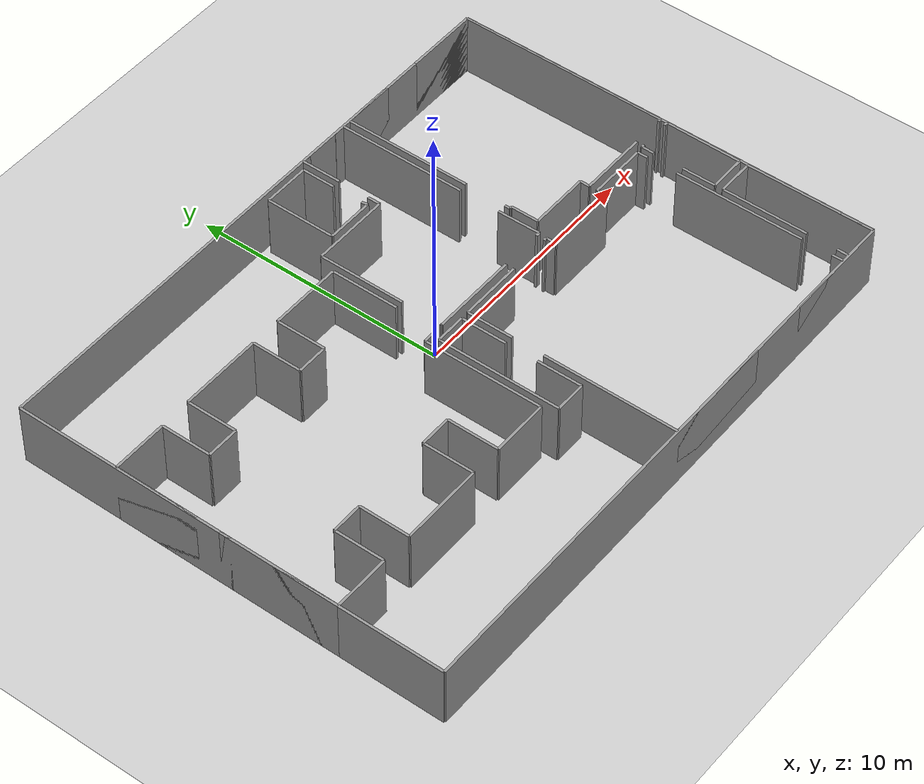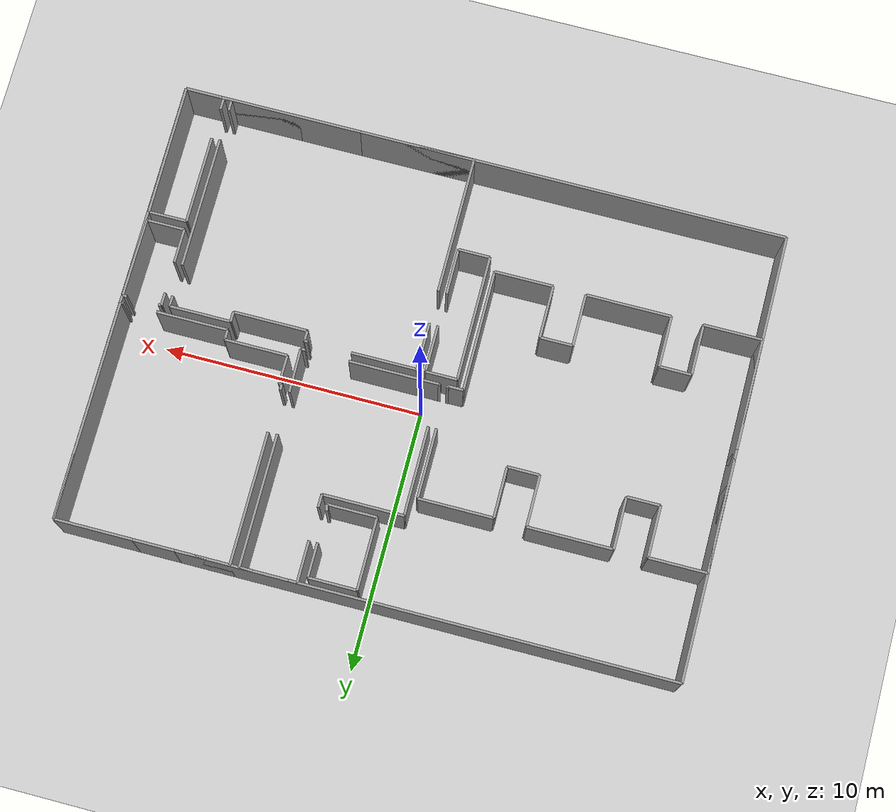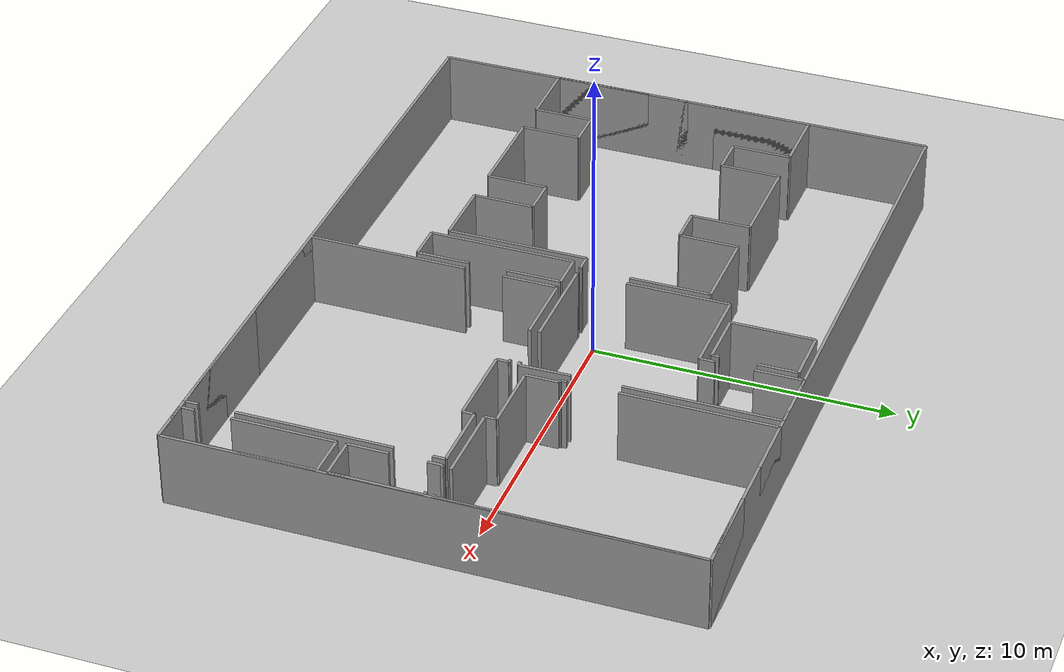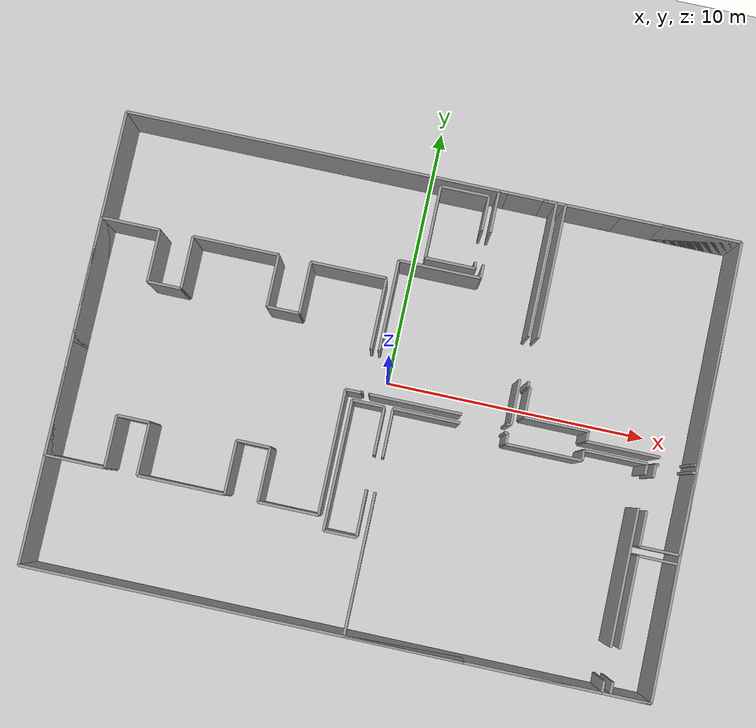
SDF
<sdf version="1.6">
 <world name="default">
  <model name="ground_plane">
   <static>1</static>
   <link name="link">
    <collision name="collision">
     <geometry><plane><normal>0 0 1</normal><size>100 100</size></plane></geometry>
     <surface><friction><ode><mu>100</mu><mu2>50</mu2></ode></friction></surface>
    </collision>
    <visual name="visual">
     <cast_shadows>0</cast_shadows>
     <geometry><plane><normal>0 0 1</normal><size>100 100</size></plane></geometry>
     <material>
      <script><uri>file://media/materials/scripts/gazebo.material</uri><name>Gazebo/Grey</name></script>
     </material>
    </visual>
   </link>
  </model>
  <model name="0510034881_A-40">
   <static>1</static>
   <link name="Wall_0">
    <collision name="Wall_0_Collision">
     <geometry><box><size>2.24652074859 0.1 2.5</size></box></geometry>
     <pose>1.12326037429 0 1.25 0 0 0</pose>
    </collision>
    <visual name="Wall_0_Visual">
     <pose>1.12326037429 0 1.25 0 0 0</pose>
     <geometry><box><size>2.24652074859 0.1 2.5</size></box></geometry>
     <material>
      <script><uri>file://media/materials/scripts/gazebo.material</uri><name>Gazebo/Grey</name></script>
      <ambient>1 1 1 1</ambient>
     </material>
    </visual>
    <pose>10.2310616397 -13.1289464833 0 0 0 3.14159265359</pose>
   </link>
   <link name="Wall_1">
    <collision name="Wall_1_Collision">
     <geometry><box><size>2.03075321906 0.1 2.5</size></box></geometry>
     <pose>1.01537660953 0 1.25 0 0 0</pose>
    </collision>
    <visual name="Wall_1_Visual">
     <pose>1.01537660953 0 1.25 0 0 0</pose>
     <geometry><box><size>2.03075321906 0.1 2.5</size></box></geometry>
     <material>
      <script><uri>file://media/materials/scripts/gazebo.material</uri><name>Gazebo/Grey</name></script>
      <ambient>1 1 1 1</ambient>
     </material>
    </visual>
    <pose>7.98454089112 -13.1289464833 0 0 0 1.57079632679</pose>
   </link>
   <link name="Wall_2">
    <collision name="Wall_2_Collision">
     <geometry><box><size>1.25525933353 0.1 2.5</size></box></geometry>
     <pose>0.627629666766 0 1.25 0 0 0</pose>
    </collision>
    <visual name="Wall_2_Visual">
     <pose>0.627629666766 0 1.25 0 0 0</pose>
     <geometry><box><size>1.25525933353 0.1 2.5</size></box></geometry>
     <material>
      <script><uri>file://media/materials/scripts/gazebo.material</uri><name>Gazebo/Grey</name></script>
      <ambient>1 1 1 1</ambient>
     </material>
    </visual>
    <pose>7.98454089112 -11.0981932642 0 0 0 3.14159265359</pose>
   </link>
   <link name="Wall_3">
    <collision name="Wall_3_Collision">
     <geometry><box><size>2.01806101144 0.1 2.5</size></box></geometry>
     <pose>1.00903050572 0 1.25 0 0 0</pose>
    </collision>
    <visual name="Wall_3_Visual">
     <pose>1.00903050572 0 1.25 0 0 0</pose>
     <geometry><box><size>2.01806101144 0.1 2.5</size></box></geometry>
     <material>
      <script><uri>file://media/materials/scripts/gazebo.material</uri><name>Gazebo/Grey</name></script>
      <ambient>1 1 1 1</ambient>
     </material>
    </visual>
    <pose>6.72928155759 -11.0981932642 0 0 0 -1.57079632679</pose>
   </link>
   <link name="Wall_4">
    <collision name="Wall_4_Collision">
     <geometry><box><size>3.26481656587 0.1 2.5</size></box></geometry>
     <pose>1.63240828293 0 1.25 0 0 0</pose>
    </collision>
    <visual name="Wall_4_Visual">
     <pose>1.63240828293 0 1.25 0 0 0</pose>
     <geometry><box><size>3.26481656587 0.1 2.5</size></box></geometry>
     <material>
      <script><uri>file://media/materials/scripts/gazebo.material</uri><name>Gazebo/Grey</name></script>
      <ambient>1 1 1 1</ambient>
     </material>
    </visual>
    <pose>6.72928155759 -13.1162542757 0 0 0 3.14159265359</pose>
   </link>
   <link name="Wall_5">
    <collision name="Wall_5_Collision">
     <geometry><box><size>1.98353820672 0.1 2.5</size></box></geometry>
     <pose>0.991769103359 0 1.25 0 0 0</pose>
    </collision>
    <visual name="Wall_5_Visual">
     <pose>0.991769103359 0 1.25 0 0 0</pose>
     <geometry><box><size>1.98353820672 0.1 2.5</size></box></geometry>
     <material>
      <script><uri>file://media/materials/scripts/gazebo.material</uri><name>Gazebo/Grey</name></script>
      <ambient>1 1 1 1</ambient>
     </material>
    </visual>
    <pose>3.46446499172 -13.1162542757 0 0 0 1.57079632679</pose>
   </link>
   <link name="Wall_6">
    <collision name="Wall_6_Collision">
     <geometry><box><size>1.22835185338 0.1 2.5</size></box></geometry>
     <pose>0.61417592669 0 1.25 0 0 0</pose>
    </collision>
    <visual name="Wall_6_Visual">
     <pose>0.61417592669 0 1.25 0 0 0</pose>
     <geometry><box><size>1.22835185338 0.1 2.5</size></box></geometry>
     <material>
      <script><uri>file://media/materials/scripts/gazebo.material</uri><name>Gazebo/Grey</name></script>
      <ambient>1 1 1 1</ambient>
     </material>
    </visual>
    <pose>3.46446499172 -11.132716069 0 0 0 3.14159265359</pose>
   </link>
   <link name="Wall_7">
    <collision name="Wall_7_Collision">
     <geometry><box><size>1.96741910304 0.1 2.5</size></box></geometry>
     <pose>0.983709551521 0 1.25 0 0 0</pose>
    </collision>
    <visual name="Wall_7_Visual">
     <pose>0.983709551521 0 1.25 0 0 0</pose>
     <geometry><box><size>1.96741910304 0.1 2.5</size></box></geometry>
     <material>
      <script><uri>file://media/materials/scripts/gazebo.material</uri><name>Gazebo/Grey</name></script>
      <ambient>1 1 1 1</ambient>
     </material>
    </visual>
    <pose>2.23611313834 -11.132716069 0 0 0 -1.57079632679</pose>
   </link>
   <link name="Wall_8">
    <collision name="Wall_8_Collision">
     <geometry><box><size>2.23611313834 0.1 2.5</size></box></geometry>
     <pose>1.11805656917 0 1.25 0 0 0</pose>
    </collision>
    <visual name="Wall_8_Visual">
     <pose>1.11805656917 0 1.25 0 0 0</pose>
     <geometry><box><size>2.23611313834 0.1 2.5</size></box></geometry>
     <material>
      <script><uri>file://media/materials/scripts/gazebo.material</uri><name>Gazebo/Grey</name></script>
      <ambient>1 1 1 1</ambient>
     </material>
    </visual>
    <pose>2.23611313834 -13.100135172 0 0 0 3.14159265359</pose>
   </link>
   <link name="Wall_9">
    <collision name="Wall_9_Collision">
     <geometry><box><size>3.29845091606 0.1 2.5</size></box></geometry>
     <pose>1.64922545803 0 1.25 0 0 0</pose>
    </collision>
    <visual name="Wall_9_Visual">
     <pose>1.64922545803 0 1.25 0 0 0</pose>
     <geometry><box><size>3.29845091606 0.1 2.5</size></box></geometry>
     <material>
      <script><uri>file://media/materials/scripts/gazebo.material</uri><name>Gazebo/Grey</name></script>
      <ambient>1 1 1 1</ambient>
     </material>
    </visual>
    <pose>0.0 -13.100135172 0 0 0 1.57079632679</pose>
   </link>
   <link name="Wall_10">
    <collision name="Wall_10_Collision">
     <geometry><box><size>0.442323435527 0.1 2.5</size></box></geometry>
     <pose>0.221161717763 0 1.25 0 0 0</pose>
    </collision>
    <visual name="Wall_10_Visual">
     <pose>0.221161717763 0 1.25 0 0 0</pose>
     <geometry><box><size>0.442323435527 0.1 2.5</size></box></geometry>
     <material>
      <script><uri>file://media/materials/scripts/gazebo.material</uri><name>Gazebo/Grey</name></script>
      <ambient>1 1 1 1</ambient>
     </material>
    </visual>
    <pose>0.0 -8.81689586678 0 0 0 1.57079632679</pose>
   </link>
   <link name="Wall_11">
    <collision name="Wall_11_Collision">
     <geometry><box><size>3.3344967857 0.1 2.5</size></box></geometry>
     <pose>1.66724839285 0 1.25 0 0 0</pose>
    </collision>
    <visual name="Wall_11_Visual">
     <pose>1.66724839285 0 1.25 0 0 0</pose>
     <geometry><box><size>3.3344967857 0.1 2.5</size></box></geometry>
     <material>
      <script><uri>file://media/materials/scripts/gazebo.material</uri><name>Gazebo/Grey</name></script>
      <ambient>1 1 1 1</ambient>
     </material>
    </visual>
    <pose>0.0 -7.43154140515 0 0 0 1.57079632679</pose>
   </link>
   <link name="Wall_12">
    <collision name="Wall_12_Collision">
     <geometry><box><size>2.21402869708 0.1 2.5</size></box></geometry>
     <pose>1.10701434854 0 1.25 0 0 0</pose>
    </collision>
    <visual name="Wall_12_Visual">
     <pose>1.10701434854 0 1.25 0 0 0</pose>
     <geometry><box><size>2.21402869708 0.1 2.5</size></box></geometry>
     <material>
      <script><uri>file://media/materials/scripts/gazebo.material</uri><name>Gazebo/Grey</name></script>
      <ambient>1 1 1 1</ambient>
     </material>
    </visual>
    <pose>0.0 -4.09704461946 0 0 0 0.0</pose>
   </link>
   <link name="Wall_13">
    <collision name="Wall_13_Collision">
     <geometry><box><size>1.97554211592 0.1 2.5</size></box></geometry>
     <pose>0.987771057959 0 1.25 0 0 0</pose>
    </collision>
    <visual name="Wall_13_Visual">
     <pose>0.987771057959 0 1.25 0 0 0</pose>
     <geometry><box><size>1.97554211592 0.1 2.5</size></box></geometry>
     <material>
      <script><uri>file://media/materials/scripts/gazebo.material</uri><name>Gazebo/Grey</name></script>
      <ambient>1 1 1 1</ambient>
     </material>
    </visual>
    <pose>2.21402869708 -4.09704461946 0 0 0 -1.57079632679</pose>
   </link>
   <link name="Wall_14">
    <collision name="Wall_14_Collision">
     <geometry><box><size>1.26922076191 0.1 2.5</size></box></geometry>
     <pose>0.634610380957 0 1.25 0 0 0</pose>
    </collision>
    <visual name="Wall_14_Visual">
     <pose>0.634610380957 0 1.25 0 0 0</pose>
     <geometry><box><size>1.26922076191 0.1 2.5</size></box></geometry>
     <material>
      <script><uri>file://media/materials/scripts/gazebo.material</uri><name>Gazebo/Grey</name></script>
      <ambient>1 1 1 1</ambient>
     </material>
    </visual>
    <pose>2.21402869708 -6.07258673537 0 0 0 0.0</pose>
   </link>
   <link name="Wall_15">
    <collision name="Wall_15_Collision">
     <geometry><box><size>1.99762655718 0.1 2.5</size></box></geometry>
     <pose>0.998813278588 0 1.25 0 0 0</pose>
    </collision>
    <visual name="Wall_15_Visual">
     <pose>0.998813278588 0 1.25 0 0 0</pose>
     <geometry><box><size>1.99762655718 0.1 2.5</size></box></geometry>
     <material>
      <script><uri>file://media/materials/scripts/gazebo.material</uri><name>Gazebo/Grey</name></script>
      <ambient>1 1 1 1</ambient>
     </material>
    </visual>
    <pose>3.48324945899 -6.07258673537 0 0 0 1.57079632679</pose>
   </link>
   <link name="Wall_16">
    <collision name="Wall_16_Collision">
     <geometry><box><size>3.24476287783 0.1 2.5</size></box></geometry>
     <pose>1.62238143892 0 1.25 0 0 0</pose>
    </collision>
    <visual name="Wall_16_Visual">
     <pose>1.62238143892 0 1.25 0 0 0</pose>
     <geometry><box><size>3.24476287783 0.1 2.5</size></box></geometry>
     <material>
      <script><uri>file://media/materials/scripts/gazebo.material</uri><name>Gazebo/Grey</name></script>
      <ambient>1 1 1 1</ambient>
     </material>
    </visual>
    <pose>3.48324945899 -4.0749601782 0 0 0 0.0</pose>
   </link>
   <link name="Wall_17">
    <collision name="Wall_17_Collision">
     <geometry><box><size>1.97554211592 0.1 2.5</size></box></geometry>
     <pose>0.987771057959 0 1.25 0 0 0</pose>
    </collision>
    <visual name="Wall_17_Visual">
     <pose>0.987771057959 0 1.25 0 0 0</pose>
     <geometry><box><size>1.97554211592 0.1 2.5</size></box></geometry>
     <material>
      <script><uri>file://media/materials/scripts/gazebo.material</uri><name>Gazebo/Grey</name></script>
      <ambient>1 1 1 1</ambient>
     </material>
    </visual>
    <pose>6.72801233683 -4.0749601782 0 0 0 -1.57079632679</pose>
   </link>
   <link name="Wall_18">
    <collision name="Wall_18_Collision">
     <geometry><box><size>1.2250518794 0.1 2.5</size></box></geometry>
     <pose>0.612525939699 0 1.25 0 0 0</pose>
    </collision>
    <visual name="Wall_18_Visual">
     <pose>0.612525939699 0 1.25 0 0 0</pose>
     <geometry><box><size>1.2250518794 0.1 2.5</size></box></geometry>
     <material>
      <script><uri>file://media/materials/scripts/gazebo.material</uri><name>Gazebo/Grey</name></script>
      <ambient>1 1 1 1</ambient>
     </material>
    </visual>
    <pose>6.72801233683 -6.05050229412 0 0 0 0.0</pose>
   </link>
   <link name="Wall_19">
    <collision name="Wall_19_Collision">
     <geometry><box><size>1.96449989529 0.1 2.5</size></box></geometry>
     <pose>0.982249947645 0 1.25 0 0 0</pose>
    </collision>
    <visual name="Wall_19_Visual">
     <pose>0.982249947645 0 1.25 0 0 0</pose>
     <geometry><box><size>1.96449989529 0.1 2.5</size></box></geometry>
     <material>
      <script><uri>file://media/materials/scripts/gazebo.material</uri><name>Gazebo/Grey</name></script>
      <ambient>1 1 1 1</ambient>
     </material>
    </visual>
    <pose>7.95306421622 -6.05050229412 0 0 0 1.57079632679</pose>
   </link>
   <link name="Wall_20">
    <collision name="Wall_20_Collision">
     <geometry><box><size>2.85853899998 0.1 2.5</size></box></geometry>
     <pose>1.42926949999 0 1.25 0 0 0</pose>
    </collision>
    <visual name="Wall_20_Visual">
     <pose>1.42926949999 0 1.25 0 0 0</pose>
     <geometry><box><size>2.85853899998 0.1 2.5</size></box></geometry>
     <material>
      <script><uri>file://media/materials/scripts/gazebo.material</uri><name>Gazebo/Grey</name></script>
      <ambient>1 1 1 1</ambient>
     </material>
    </visual>
    <pose>7.95306421622 -4.08600239883 0 0 0 0.0</pose>
   </link>
   <link name="Wall_21">
    <collision name="Wall_21_Collision">
     <geometry><box><size>2.68630574259 0.1 2.5</size></box></geometry>
     <pose>1.34315287129 0 1.25 0 0 0</pose>
    </collision>
    <visual name="Wall_21_Visual">
     <pose>1.34315287129 0 1.25 0 0 0</pose>
     <geometry><box><size>2.68630574259 0.1 2.5</size></box></geometry>
     <material>
      <script><uri>file://media/materials/scripts/gazebo.material</uri><name>Gazebo/Grey</name></script>
      <ambient>1 1 1 1</ambient>
     </material>
    </visual>
    <pose>10.8116032162 -4.08600239883 0 0 0 -1.57079632679</pose>
   </link>
   <link name="Wall_22">
    <collision name="Wall_22_Collision">
     <geometry><box><size>0.0667610120766 0.1 2.5</size></box></geometry>
     <pose>0.0333805060383 0 1.25 0 0 0</pose>
    </collision>
    <visual name="Wall_22_Visual">
     <pose>0.0333805060383 0 1.25 0 0 0</pose>
     <geometry><box><size>0.0667610120766 0.1 2.5</size></box></geometry>
     <material>
      <script><uri>file://media/materials/scripts/gazebo.material</uri><name>Gazebo/Grey</name></script>
      <ambient>1 1 1 1</ambient>
     </material>
    </visual>
    <pose>10.8116032162 -8.36619557423 0 0 0 -1.57079632679</pose>
   </link>
   <link name="Wall_23">
    <collision name="Wall_23_Collision">
     <geometry><box><size>0.595264537337 0.1 2.5</size></box></geometry>
     <pose>0.297632268669 0 1.25 0 0 0</pose>
    </collision>
    <visual name="Wall_23_Visual">
     <pose>0.297632268669 0 1.25 0 0 0</pose>
     <geometry><box><size>0.595264537337 0.1 2.5</size></box></geometry>
     <material>
      <script><uri>file://media/materials/scripts/gazebo.material</uri><name>Gazebo/Grey</name></script>
      <ambient>1 1 1 1</ambient>
     </material>
    </visual>
    <pose>10.8116032162 -8.4329565863 0 0 0 3.14159265359</pose>
   </link>
   <link name="Wall_24">
    <collision name="Wall_24_Collision">
     <geometry><box><size>4.69601297681 0.1 2.5</size></box></geometry>
     <pose>2.3480064884 0 1.25 0 0 0</pose>
    </collision>
    <visual name="Wall_24_Visual">
     <pose>2.3480064884 0 1.25 0 0 0</pose>
     <geometry><box><size>4.69601297681 0.1 2.5</size></box></geometry>
     <material>
      <script><uri>file://media/materials/scripts/gazebo.material</uri><name>Gazebo/Grey</name></script>
      <ambient>1 1 1 1</ambient>
     </material>
    </visual>
    <pose>10.2163386789 -8.4329565863 0 0 0 -1.5676611172</pose>
   </link>
   <link name="Wall_25">
    <collision name="Wall_25_Collision">
     <geometry><box><size>0.166902530192 0.1 2.5</size></box></geometry>
     <pose>0.0834512650958 0 1.25 0 0 0</pose>
    </collision>
    <visual name="Wall_25_Visual">
     <pose>0.0834512650958 0 1.25 0 0 0</pose>
     <geometry><box><size>0.166902530192 0.1 2.5</size></box></geometry>
     <material>
      <script><uri>file://media/materials/scripts/gazebo.material</uri><name>Gazebo/Grey</name></script>
      <ambient>1 1 1 1</ambient>
     </material>
    </visual>
    <pose>16.416862867 -8.42470665135 0 0 0 3.14159265359</pose>
   </link>
   <link name="Wall_26">
    <collision name="Wall_26_Collision">
     <geometry><box><size>3.46332269303 0.1 2.5</size></box></geometry>
     <pose>1.73166134652 0 1.25 0 0 0</pose>
    </collision>
    <visual name="Wall_26_Visual">
     <pose>1.73166134652 0 1.25 0 0 0</pose>
     <geometry><box><size>3.46332269303 0.1 2.5</size></box></geometry>
     <material>
      <script><uri>file://media/materials/scripts/gazebo.material</uri><name>Gazebo/Grey</name></script>
      <ambient>1 1 1 1</ambient>
     </material>
    </visual>
    <pose>14.5809350349 -8.42470665135 0 0 0 3.14159265359</pose>
   </link>
   <link name="Wall_27">
    <collision name="Wall_27_Collision">
     <geometry><box><size>0.0519111291623 0.1 2.5</size></box></geometry>
     <pose>0.0259555645811 0 1.25 0 0 0</pose>
    </collision>
    <visual name="Wall_27_Visual">
     <pose>0.0259555645811 0 1.25 0 0 0</pose>
     <geometry><box><size>0.0519111291623 0.1 2.5</size></box></geometry>
     <material>
      <script><uri>file://media/materials/scripts/gazebo.material</uri><name>Gazebo/Grey</name></script>
      <ambient>1 1 1 1</ambient>
     </material>
    </visual>
    <pose>11.1176123419 -8.42470665135 0 0 0 1.57079632679</pose>
   </link>
   <link name="Wall_28">
    <collision name="Wall_28_Collision">
     <geometry><box><size>3.42689605717 0.1 2.5</size></box></geometry>
     <pose>1.71344802858 0 1.25 0 0 0</pose>
    </collision>
    <visual name="Wall_28_Visual">
     <pose>1.71344802858 0 1.25 0 0 0</pose>
     <geometry><box><size>3.42689605717 0.1 2.5</size></box></geometry>
     <material>
      <script><uri>file://media/materials/scripts/gazebo.material</uri><name>Gazebo/Grey</name></script>
      <ambient>1 1 1 1</ambient>
     </material>
    </visual>
    <pose>11.1176123419 -6.77015046612 0 0 0 1.57079632679</pose>
   </link>
   <link name="Wall_29">
    <collision name="Wall_29_Collision">
     <geometry><box><size>3.09613712661 0.1 2.5</size></box></geometry>
     <pose>1.54806856331 0 1.25 0 0 0</pose>
    </collision>
    <visual name="Wall_29_Visual">
     <pose>1.54806856331 0 1.25 0 0 0</pose>
     <geometry><box><size>3.09613712661 0.1 2.5</size></box></geometry>
     <material>
      <script><uri>file://media/materials/scripts/gazebo.material</uri><name>Gazebo/Grey</name></script>
      <ambient>1 1 1 1</ambient>
     </material>
    </visual>
    <pose>11.1176123419 -3.34325440896 0 0 0 0.0</pose>
   </link>
   <link name="Wall_30">
    <collision name="Wall_30_Collision">
     <geometry><box><size>0.501596045108 0.1 2.5</size></box></geometry>
     <pose>0.250798022554 0 1.25 0 0 0</pose>
    </collision>
    <visual name="Wall_30_Visual">
     <pose>0.250798022554 0 1.25 0 0 0</pose>
     <geometry><box><size>0.501596045108 0.1 2.5</size></box></geometry>
     <material>
      <script><uri>file://media/materials/scripts/gazebo.material</uri><name>Gazebo/Grey</name></script>
      <ambient>1 1 1 1</ambient>
     </material>
    </visual>
    <pose>14.2137494685 -3.34325440896 0 0 0 1.57079632679</pose>
   </link>
   <link name="Wall_31">
    <collision name="Wall_31_Collision">
     <geometry><box><size>1.58563749786 0.1 2.5</size></box></geometry>
     <pose>0.792818748929 0 1.25 0 0 0</pose>
    </collision>
    <visual name="Wall_31_Visual">
     <pose>0.792818748929 0 1.25 0 0 0</pose>
     <geometry><box><size>1.58563749786 0.1 2.5</size></box></geometry>
     <material>
      <script><uri>file://media/materials/scripts/gazebo.material</uri><name>Gazebo/Grey</name></script>
      <ambient>1 1 1 1</ambient>
     </material>
    </visual>
    <pose>14.2137494685 -1.58982592637 0 0 0 1.57079632679</pose>
   </link>
   <link name="Wall_32">
    <collision name="Wall_32_Collision">
     <geometry><box><size>0.331520463012 0.1 2.5</size></box></geometry>
     <pose>0.165760231506 0 1.25 0 0 0</pose>
    </collision>
    <visual name="Wall_32_Visual">
     <pose>0.165760231506 0 1.25 0 0 0</pose>
     <geometry><box><size>0.331520463012 0.1 2.5</size></box></geometry>
     <material>
      <script><uri>file://media/materials/scripts/gazebo.material</uri><name>Gazebo/Grey</name></script>
      <ambient>1 1 1 1</ambient>
     </material>
    </visual>
    <pose>14.2137494685 -0.00418842851432 0 0 0 0.0</pose>
   </link>
   <link name="Wall_33">
    <collision name="Wall_33_Collision">
     <geometry><box><size>0.498422993203 0.1 2.5</size></box></geometry>
     <pose>0.249211496602 0 1.25 0 0 0</pose>
    </collision>
    <visual name="Wall_33_Visual">
     <pose>0.249211496602 0 1.25 0 0 0</pose>
     <geometry><box><size>0.498422993203 0.1 2.5</size></box></geometry>
     <material>
      <script><uri>file://media/materials/scripts/gazebo.material</uri><name>Gazebo/Grey</name></script>
      <ambient>1 1 1 1</ambient>
     </material>
    </visual>
    <pose>15.8893747184 -0.00418842851432 0 0 0 0.0</pose>
   </link>
   <link name="Wall_34">
    <collision name="Wall_34_Collision">
     <geometry><box><size>5.09579443701 0.1 2.5</size></box></geometry>
     <pose>2.5478972185 0 1.25 0 0 0</pose>
    </collision>
    <visual name="Wall_34_Visual">
     <pose>2.5478972185 0 1.25 0 0 0</pose>
     <geometry><box><size>5.09579443701 0.1 2.5</size></box></geometry>
     <material>
      <script><uri>file://media/materials/scripts/gazebo.material</uri><name>Gazebo/Grey</name></script>
      <ambient>1 1 1 1</ambient>
     </material>
    </visual>
    <pose>16.3877977116 -0.00418842851432 0 0 0 -1.57079632679</pose>
   </link>
   <link name="Wall_35">
    <collision name="Wall_35_Collision">
     <geometry><box><size>1.70113106163 0.1 2.5</size></box></geometry>
     <pose>0.850565530813 0 1.25 0 0 0</pose>
    </collision>
    <visual name="Wall_35_Visual">
     <pose>0.850565530813 0 1.25 0 0 0</pose>
     <geometry><box><size>1.70113106163 0.1 2.5</size></box></geometry>
     <material>
      <script><uri>file://media/materials/scripts/gazebo.material</uri><name>Gazebo/Grey</name></script>
      <ambient>1 1 1 1</ambient>
     </material>
    </visual>
    <pose>16.3877977116 -6.72382390831 0 0 0 -1.55370971282</pose>
   </link>
   <link name="Wall_36">
    <collision name="Wall_36_Collision">
     <geometry><box><size>1.89063124695 0.1 2.5</size></box></geometry>
     <pose>0.945315623473 0 1.25 0 0 0</pose>
    </collision>
    <visual name="Wall_36_Visual">
     <pose>0.945315623473 0 1.25 0 0 0</pose>
     <geometry><box><size>1.89063124695 0.1 2.5</size></box></geometry>
     <material>
      <script><uri>file://media/materials/scripts/gazebo.material</uri><name>Gazebo/Grey</name></script>
      <ambient>1 1 1 1</ambient>
     </material>
    </visual>
    <pose>13.9445477449 -3.04232216631 0 0 0 3.14159265359</pose>
   </link>
   <link name="Wall_37">
    <collision name="Wall_37_Collision">
     <geometry><box><size>2.76398205322 0.1 2.5</size></box></geometry>
     <pose>1.38199102661 0 1.25 0 0 0</pose>
    </collision>
    <visual name="Wall_37_Visual">
     <pose>1.38199102661 0 1.25 0 0 0</pose>
     <geometry><box><size>2.76398205322 0.1 2.5</size></box></geometry>
     <material>
      <script><uri>file://media/materials/scripts/gazebo.material</uri><name>Gazebo/Grey</name></script>
      <ambient>1 1 1 1</ambient>
     </material>
    </visual>
    <pose>12.053916498 -3.04232216631 0 0 0 1.57079632679</pose>
   </link>
   <link name="Wall_38">
    <collision name="Wall_38_Collision">
     <geometry><box><size>1.84265470215 0.1 2.5</size></box></geometry>
     <pose>0.921327351073 0 1.25 0 0 0</pose>
    </collision>
    <visual name="Wall_38_Visual">
     <pose>0.921327351073 0 1.25 0 0 0</pose>
     <geometry><box><size>1.84265470215 0.1 2.5</size></box></geometry>
     <material>
      <script><uri>file://media/materials/scripts/gazebo.material</uri><name>Gazebo/Grey</name></script>
      <ambient>1 1 1 1</ambient>
     </material>
    </visual>
    <pose>12.053916498 -0.278340113088 0 0 0 0.0</pose>
   </link>
   <link name="Wall_39">
    <collision name="Wall_39_Collision">
     <geometry><box><size>1.31478578727 0.1 2.5</size></box></geometry>
     <pose>0.657392893633 0 1.25 0 0 0</pose>
    </collision>
    <visual name="Wall_39_Visual">
     <pose>0.657392893633 0 1.25 0 0 0</pose>
     <geometry><box><size>1.31478578727 0.1 2.5</size></box></geometry>
     <material>
      <script><uri>file://media/materials/scripts/gazebo.material</uri><name>Gazebo/Grey</name></script>
      <ambient>1 1 1 1</ambient>
     </material>
    </visual>
    <pose>13.8965712001 -0.278340113088 0 0 0 -1.57079632679</pose>
   </link>
   <link name="Wall_40">
    <collision name="Wall_40_Collision">
     <geometry><box><size>0.241398314945 0.1 2.5</size></box></geometry>
     <pose>0.120699157473 0 1.25 0 0 0</pose>
    </collision>
    <visual name="Wall_40_Visual">
     <pose>0.120699157473 0 1.25 0 0 0</pose>
     <geometry><box><size>0.241398314945 0.1 2.5</size></box></geometry>
     <material>
      <script><uri>file://media/materials/scripts/gazebo.material</uri><name>Gazebo/Grey</name></script>
      <ambient>1 1 1 1</ambient>
     </material>
    </visual>
    <pose>13.8965712001 -2.80573941629 0 0 0 -1.37071980822</pose>
   </link>
   <link name="Wall_41">
    <collision name="Wall_41_Collision">
     <geometry><box><size>0.121845193144 0.1 2.5</size></box></geometry>
     <pose>0.0609225965718 0 1.25 0 0 0</pose>
    </collision>
    <visual name="Wall_41_Visual">
     <pose>0.0609225965718 0 1.25 0 0 0</pose>
     <geometry><box><size>0.121845193144 0.1 2.5</size></box></geometry>
     <material>
      <script><uri>file://media/materials/scripts/gazebo.material</uri><name>Gazebo/Grey</name></script>
      <ambient>1 1 1 1</ambient>
     </material>
    </visual>
    <pose>23.3690195904 -8.43587579406 0 0 0 3.14159265359</pose>
   </link>
   <link name="Wall_42">
    <collision name="Wall_42_Collision">
     <geometry><box><size>2.74507066387 0.1 2.5</size></box></geometry>
     <pose>1.37253533193 0 1.25 0 0 0</pose>
    </collision>
    <visual name="Wall_42_Visual">
     <pose>1.37253533193 0 1.25 0 0 0</pose>
     <geometry><box><size>2.74507066387 0.1 2.5</size></box></geometry>
     <material>
      <script><uri>file://media/materials/scripts/gazebo.material</uri><name>Gazebo/Grey</name></script>
      <ambient>1 1 1 1</ambient>
     </material>
    </visual>
    <pose>21.9749075055 -8.43587579406 0 0 0 3.14159265359</pose>
   </link>
   <link name="Wall_43">
    <collision name="Wall_43_Collision">
     <geometry><box><size>0.383812358403 0.1 2.5</size></box></geometry>
     <pose>0.191906179201 0 1.25 0 0 0</pose>
    </collision>
    <visual name="Wall_43_Visual">
     <pose>0.191906179201 0 1.25 0 0 0</pose>
     <geometry><box><size>0.383812358403 0.1 2.5</size></box></geometry>
     <material>
      <script><uri>file://media/materials/scripts/gazebo.material</uri><name>Gazebo/Grey</name></script>
      <ambient>1 1 1 1</ambient>
     </material>
    </visual>
    <pose>19.2298368417 -8.43587579406 0 0 0 1.57079632679</pose>
   </link>
   <link name="Wall_44">
    <collision name="Wall_44_Collision">
     <geometry><box><size>2.39882724002 0.1 2.5</size></box></geometry>
     <pose>1.19941362001 0 1.25 0 0 0</pose>
    </collision>
    <visual name="Wall_44_Visual">
     <pose>1.19941362001 0 1.25 0 0 0</pose>
     <geometry><box><size>2.39882724002 0.1 2.5</size></box></geometry>
     <material>
      <script><uri>file://media/materials/scripts/gazebo.material</uri><name>Gazebo/Grey</name></script>
      <ambient>1 1 1 1</ambient>
     </material>
    </visual>
    <pose>19.2298368417 -8.05206343565 0 0 0 3.14159265359</pose>
   </link>
   <link name="Wall_45">
    <collision name="Wall_45_Collision">
     <geometry><box><size>1.10447590702 0.1 2.5</size></box></geometry>
     <pose>0.552237953508 0 1.25 0 0 0</pose>
    </collision>
    <visual name="Wall_45_Visual">
     <pose>0.552237953508 0 1.25 0 0 0</pose>
     <geometry><box><size>1.10447590702 0.1 2.5</size></box></geometry>
     <material>
      <script><uri>file://media/materials/scripts/gazebo.material</uri><name>Gazebo/Grey</name></script>
      <ambient>1 1 1 1</ambient>
     </material>
    </visual>
    <pose>16.8310096017 -8.05206343565 0 0 0 1.57079632679</pose>
   </link>
   <link name="Wall_46">
    <collision name="Wall_46_Collision">
     <geometry><box><size>0.0969684662102 0.1 2.5</size></box></geometry>
     <pose>0.0484842331051 0 1.25 0 0 0</pose>
    </collision>
    <visual name="Wall_46_Visual">
     <pose>0.0484842331051 0 1.25 0 0 0</pose>
     <geometry><box><size>0.0969684662102 0.1 2.5</size></box></geometry>
     <material>
      <script><uri>file://media/materials/scripts/gazebo.material</uri><name>Gazebo/Grey</name></script>
      <ambient>1 1 1 1</ambient>
     </material>
    </visual>
    <pose>16.8310096017 -6.94758752864 0 0 0 3.14159265359</pose>
   </link>
   <link name="Wall_47">
    <collision name="Wall_47_Collision">
     <geometry><box><size>0.217036750287 0.1 2.5</size></box></geometry>
     <pose>0.108518375144 0 1.25 0 0 0</pose>
    </collision>
    <visual name="Wall_47_Visual">
     <pose>0.108518375144 0 1.25 0 0 0</pose>
     <geometry><box><size>0.217036750287 0.1 2.5</size></box></geometry>
     <material>
      <script><uri>file://media/materials/scripts/gazebo.material</uri><name>Gazebo/Grey</name></script>
      <ambient>1 1 1 1</ambient>
     </material>
    </visual>
    <pose>16.7340411354 -6.94758752864 0 0 0 1.57079632679</pose>
   </link>
   <link name="Wall_48">
    <collision name="Wall_48_Collision">
     <geometry><box><size>5.0792945671 0.1 2.5</size></box></geometry>
     <pose>2.53964728355 0 1.25 0 0 0</pose>
    </collision>
    <visual name="Wall_48_Visual">
     <pose>2.53964728355 0 1.25 0 0 0</pose>
     <geometry><box><size>5.0792945671 0.1 2.5</size></box></geometry>
     <material>
      <script><uri>file://media/materials/scripts/gazebo.material</uri><name>Gazebo/Grey</name></script>
      <ambient>1 1 1 1</ambient>
     </material>
    </visual>
    <pose>16.7340411354 -5.0792945671 0 0 0 1.57079632679</pose>
   </link>
   <link name="Wall_49">
    <collision name="Wall_49_Collision">
     <geometry><box><size>2.07631824441 0.1 2.5</size></box></geometry>
     <pose>1.03815912221 0 1.25 0 0 0</pose>
    </collision>
    <visual name="Wall_49_Visual">
     <pose>1.03815912221 0 1.25 0 0 0</pose>
     <geometry><box><size>2.07631824441 0.1 2.5</size></box></geometry>
     <material>
      <script><uri>file://media/materials/scripts/gazebo.material</uri><name>Gazebo/Grey</name></script>
      <ambient>1 1 1 1</ambient>
     </material>
    </visual>
    <pose>16.7340411354 -0.0 0 0 0 0.0</pose>
   </link>
   <link name="Wall_50">
    <collision name="Wall_50_Collision">
     <geometry><box><size>2.9853341541 0.1 2.5</size></box></geometry>
     <pose>1.49266707705 0 1.25 0 0 0</pose>
    </collision>
    <visual name="Wall_50_Visual">
     <pose>1.49266707705 0 1.25 0 0 0</pose>
     <geometry><box><size>2.9853341541 0.1 2.5</size></box></geometry>
     <material>
      <script><uri>file://media/materials/scripts/gazebo.material</uri><name>Gazebo/Grey</name></script>
      <ambient>1 1 1 1</ambient>
     </material>
    </visual>
    <pose>20.394854579 -0.0 0 0 0 0.0</pose>
   </link>
   <link name="Wall_51">
    <collision name="Wall_51_Collision">
     <geometry><box><size>8.43588318805 0.1 2.5</size></box></geometry>
     <pose>4.21794159403 0 1.25 0 0 0</pose>
    </collision>
    <visual name="Wall_51_Visual">
     <pose>4.21794159403 0 1.25 0 0 0</pose>
     <geometry><box><size>8.43588318805 0.1 2.5</size></box></geometry>
     <material>
      <script><uri>file://media/materials/scripts/gazebo.material</uri><name>Gazebo/Grey</name></script>
      <ambient>1 1 1 1</ambient>
     </material>
    </visual>
    <pose>23.3801887331 -0.0 0 0 0 -1.57212033114</pose>
   </link>
   <link name="Wall_52">
    <collision name="Wall_52_Collision">
     <geometry><box><size>2.66536360002 0.1 2.5</size></box></geometry>
     <pose>1.33268180001 0 1.25 0 0 0</pose>
    </collision>
    <visual name="Wall_52_Visual">
     <pose>1.33268180001 0 1.25 0 0 0</pose>
     <geometry><box><size>2.66536360002 0.1 2.5</size></box></geometry>
     <material>
      <script><uri>file://media/materials/scripts/gazebo.material</uri><name>Gazebo/Grey</name></script>
      <ambient>1 1 1 1</ambient>
     </material>
    </visual>
    <pose>21.5778952512 -17.1904529214 0 0 0 3.14159265359</pose>
   </link>
   <link name="Wall_53">
    <collision name="Wall_53_Collision">
     <geometry><box><size>4.42958045908 0.1 2.5</size></box></geometry>
     <pose>2.21479022954 0 1.25 0 0 0</pose>
    </collision>
    <visual name="Wall_53_Visual">
     <pose>2.21479022954 0 1.25 0 0 0</pose>
     <geometry><box><size>4.42958045908 0.1 2.5</size></box></geometry>
     <material>
      <script><uri>file://media/materials/scripts/gazebo.material</uri><name>Gazebo/Grey</name></script>
      <ambient>1 1 1 1</ambient>
     </material>
    </visual>
    <pose>16.5010122036 -17.1904529214 0 0 0 3.14159265359</pose>
   </link>
   <link name="Wall_54">
    <collision name="Wall_54_Collision">
     <geometry><box><size>5.31803499242 0.1 2.5</size></box></geometry>
     <pose>2.65901749621 0 1.25 0 0 0</pose>
    </collision>
    <visual name="Wall_54_Visual">
     <pose>2.65901749621 0 1.25 0 0 0</pose>
     <geometry><box><size>5.31803499242 0.1 2.5</size></box></geometry>
     <material>
      <script><uri>file://media/materials/scripts/gazebo.material</uri><name>Gazebo/Grey</name></script>
      <ambient>1 1 1 1</ambient>
     </material>
    </visual>
    <pose>12.0714317445 -17.1904529214 0 0 0 1.57079632679</pose>
   </link>
   <link name="Wall_55">
    <collision name="Wall_55_Collision">
     <geometry><box><size>1.83300862436 0.1 2.5</size></box></geometry>
     <pose>0.916504312178 0 1.25 0 0 0</pose>
    </collision>
    <visual name="Wall_55_Visual">
     <pose>0.916504312178 0 1.25 0 0 0</pose>
     <geometry><box><size>1.83300862436 0.1 2.5</size></box></geometry>
     <material>
      <script><uri>file://media/materials/scripts/gazebo.material</uri><name>Gazebo/Grey</name></script>
      <ambient>1 1 1 1</ambient>
     </material>
    </visual>
    <pose>12.0714317445 -10.5856819206 0 0 0 1.57079632679</pose>
   </link>
   <link name="Wall_56">
    <collision name="Wall_56_Collision">
     <geometry><box><size>2.5065840827 0.1 2.5</size></box></geometry>
     <pose>1.25329204135 0 1.25 0 0 0</pose>
    </collision>
    <visual name="Wall_56_Visual">
     <pose>1.25329204135 0 1.25 0 0 0</pose>
     <geometry><box><size>2.5065840827 0.1 2.5</size></box></geometry>
     <material>
      <script><uri>file://media/materials/scripts/gazebo.material</uri><name>Gazebo/Grey</name></script>
      <ambient>1 1 1 1</ambient>
     </material>
    </visual>
    <pose>12.0714317445 -8.75267329623 0 0 0 0.0</pose>
   </link>
   <link name="Wall_57">
    <collision name="Wall_57_Collision">
     <geometry><box><size>0.125272089201 0.1 2.5</size></box></geometry>
     <pose>0.0626360446004 0 1.25 0 0 0</pose>
    </collision>
    <visual name="Wall_57_Visual">
     <pose>0.0626360446004 0 1.25 0 0 0</pose>
     <geometry><box><size>0.125272089201 0.1 2.5</size></box></geometry>
     <material>
      <script><uri>file://media/materials/scripts/gazebo.material</uri><name>Gazebo/Grey</name></script>
      <ambient>1 1 1 1</ambient>
     </material>
    </visual>
    <pose>16.2415834798 -8.75267329623 0 0 0 0.0</pose>
   </link>
   <link name="Wall_58">
    <collision name="Wall_58_Collision">
     <geometry><box><size>0.398027630936 0.1 2.5</size></box></geometry>
     <pose>0.199013815468 0 1.25 0 0 0</pose>
    </collision>
    <visual name="Wall_58_Visual">
     <pose>0.199013815468 0 1.25 0 0 0</pose>
     <geometry><box><size>0.398027630936 0.1 2.5</size></box></geometry>
     <material>
      <script><uri>file://media/materials/scripts/gazebo.material</uri><name>Gazebo/Grey</name></script>
      <ambient>1 1 1 1</ambient>
     </material>
    </visual>
    <pose>16.366855569 -8.75267329623 0 0 0 -1.57079632679</pose>
   </link>
   <link name="Wall_59">
    <collision name="Wall_59_Collision">
     <geometry><box><size>2.84571987029 0.1 2.5</size></box></geometry>
     <pose>1.42285993514 0 1.25 0 0 0</pose>
    </collision>
    <visual name="Wall_59_Visual">
     <pose>1.42285993514 0 1.25 0 0 0</pose>
     <geometry><box><size>2.84571987029 0.1 2.5</size></box></geometry>
     <material>
      <script><uri>file://media/materials/scripts/gazebo.material</uri><name>Gazebo/Grey</name></script>
      <ambient>1 1 1 1</ambient>
     </material>
    </visual>
    <pose>16.366855569 -9.15070092717 0 0 0 0.0</pose>
   </link>
   <link name="Wall_60">
    <collision name="Wall_60_Collision">
     <geometry><box><size>0.383939280479 0.1 2.5</size></box></geometry>
     <pose>0.191969640239 0 1.25 0 0 0</pose>
    </collision>
    <visual name="Wall_60_Visual">
     <pose>0.191969640239 0 1.25 0 0 0</pose>
     <geometry><box><size>0.383939280479 0.1 2.5</size></box></geometry>
     <material>
      <script><uri>file://media/materials/scripts/gazebo.material</uri><name>Gazebo/Grey</name></script>
      <ambient>1 1 1 1</ambient>
     </material>
    </visual>
    <pose>19.2125754393 -9.15070092717 0 0 0 1.57079632679</pose>
   </link>
   <link name="Wall_61">
    <collision name="Wall_61_Collision">
     <geometry><box><size>2.35338913674 0.1 2.5</size></box></geometry>
     <pose>1.17669456837 0 1.25 0 0 0</pose>
    </collision>
    <visual name="Wall_61_Visual">
     <pose>1.17669456837 0 1.25 0 0 0</pose>
     <geometry><box><size>2.35338913674 0.1 2.5</size></box></geometry>
     <material>
      <script><uri>file://media/materials/scripts/gazebo.material</uri><name>Gazebo/Grey</name></script>
      <ambient>1 1 1 1</ambient>
     </material>
    </visual>
    <pose>19.2125754393 -8.76676164669 0 0 0 0.0</pose>
   </link>
   <link name="Wall_62">
    <collision name="Wall_62_Collision">
     <geometry><box><size>0.408942929488 0.1 2.5</size></box></geometry>
     <pose>0.204471464744 0 1.25 0 0 0</pose>
    </collision>
    <visual name="Wall_62_Visual">
     <pose>0.204471464744 0 1.25 0 0 0</pose>
     <geometry><box><size>0.408942929488 0.1 2.5</size></box></geometry>
     <material>
      <script><uri>file://media/materials/scripts/gazebo.material</uri><name>Gazebo/Grey</name></script>
      <ambient>1 1 1 1</ambient>
     </material>
    </visual>
    <pose>21.565964576 -8.76676164669 0 0 0 -1.57079632679</pose>
   </link>
   <link name="Wall_63">
    <collision name="Wall_63_Collision">
     <geometry><box><size>5.12536728076 0.1 2.5</size></box></geometry>
     <pose>2.56268364038 0 1.25 0 0 0</pose>
    </collision>
    <visual name="Wall_63_Visual">
     <pose>2.56268364038 0 1.25 0 0 0</pose>
     <geometry><box><size>5.12536728076 0.1 2.5</size></box></geometry>
     <material>
      <script><uri>file://media/materials/scripts/gazebo.material</uri><name>Gazebo/Grey</name></script>
      <ambient>1 1 1 1</ambient>
     </material>
    </visual>
    <pose>21.565964576 -10.4100217671 0 0 0 -1.57079632679</pose>
   </link>
   <link name="Wall_64">
    <collision name="Wall_64_Collision">
     <geometry><box><size>0.456567694209 0.1 2.5</size></box></geometry>
     <pose>0.228283847104 0 1.25 0 0 0</pose>
    </collision>
    <visual name="Wall_64_Visual">
     <pose>0.228283847104 0 1.25 0 0 0</pose>
     <geometry><box><size>0.456567694209 0.1 2.5</size></box></geometry>
     <material>
      <script><uri>file://media/materials/scripts/gazebo.material</uri><name>Gazebo/Grey</name></script>
      <ambient>1 1 1 1</ambient>
     </material>
    </visual>
    <pose>21.565964576 -16.7340411354 0 0 0 -1.54466212255</pose>
   </link>
   <link name="Wall_65">
    <collision name="Wall_65_Collision">
     <geometry><box><size>1.46772688908 0.1 2.5</size></box></geometry>
     <pose>0.733863444538 0 1.25 0 0 0</pose>
    </collision>
    <visual name="Wall_65_Visual">
     <pose>0.733863444538 0 1.25 0 0 0</pose>
     <geometry><box><size>1.46772688908 0.1 2.5</size></box></geometry>
     <material>
      <script><uri>file://media/materials/scripts/gazebo.material</uri><name>Gazebo/Grey</name></script>
      <ambient>1 1 1 1</ambient>
     </material>
    </visual>
    <pose>23.3395736687 -11.7696110473 0 0 0 3.14159265359</pose>
   </link>
   <link name="Wall_66">
    <collision name="Wall_66_Collision">
     <geometry><box><size>1.32785876111 0.1 2.5</size></box></geometry>
     <pose>0.663929380557 0 1.25 0 0 0</pose>
    </collision>
    <visual name="Wall_66_Visual">
     <pose>0.663929380557 0 1.25 0 0 0</pose>
     <geometry><box><size>1.32785876111 0.1 2.5</size></box></geometry>
     <material>
      <script><uri>file://media/materials/scripts/gazebo.material</uri><name>Gazebo/Grey</name></script>
      <ambient>1 1 1 1</ambient>
     </material>
    </visual>
    <pose>21.8718467797 -11.7696110473 0 0 0 1.57079632679</pose>
   </link>
   <link name="Wall_67">
    <collision name="Wall_67_Collision">
     <geometry><box><size>0.489411525794 0.1 2.5</size></box></geometry>
     <pose>0.244705762897 0 1.25 0 0 0</pose>
    </collision>
    <visual name="Wall_67_Visual">
     <pose>0.244705762897 0 1.25 0 0 0</pose>
     <geometry><box><size>0.489411525794 0.1 2.5</size></box></geometry>
     <material>
      <script><uri>file://media/materials/scripts/gazebo.material</uri><name>Gazebo/Grey</name></script>
      <ambient>1 1 1 1</ambient>
     </material>
    </visual>
    <pose>21.8718467797 -9.21327351073 0 0 0 1.57079632679</pose>
   </link>
   <link name="Wall_68">
    <collision name="Wall_68_Collision">
     <geometry><box><size>0.115118323106 0.1 2.5</size></box></geometry>
     <pose>0.0575591615528 0 1.25 0 0 0</pose>
    </collision>
    <visual name="Wall_68_Visual">
     <pose>0.0575591615528 0 1.25 0 0 0</pose>
     <geometry><box><size>0.115118323106 0.1 2.5</size></box></geometry>
     <material>
      <script><uri>file://media/materials/scripts/gazebo.material</uri><name>Gazebo/Grey</name></script>
      <ambient>1 1 1 1</ambient>
     </material>
    </visual>
    <pose>21.8718467797 -8.72386198493 0 0 0 0.0</pose>
   </link>
   <link name="Wall_69">
    <collision name="Wall_69_Collision">
     <geometry><box><size>0.158525673163 0.1 2.5</size></box></geometry>
     <pose>0.0792628365815 0 1.25 0 0 0</pose>
    </collision>
    <visual name="Wall_69_Visual">
     <pose>0.0792628365815 0 1.25 0 0 0</pose>
     <geometry><box><size>0.158525673163 0.1 2.5</size></box></geometry>
     <material>
      <script><uri>file://media/materials/scripts/gazebo.material</uri><name>Gazebo/Grey</name></script>
      <ambient>1 1 1 1</ambient>
     </material>
    </visual>
    <pose>23.209986229 -8.72386198493 0 0 0 0.0</pose>
   </link>
   <link name="Wall_70">
    <collision name="Wall_70_Collision">
     <geometry><box><size>3.04588653305 0.1 2.5</size></box></geometry>
     <pose>1.52294326653 0 1.25 0 0 0</pose>
    </collision>
    <visual name="Wall_70_Visual">
     <pose>1.52294326653 0 1.25 0 0 0</pose>
     <geometry><box><size>3.04588653305 0.1 2.5</size></box></geometry>
     <material>
      <script><uri>file://media/materials/scripts/gazebo.material</uri><name>Gazebo/Grey</name></script>
      <ambient>1 1 1 1</ambient>
     </material>
    </visual>
    <pose>23.3685119021 -8.72386198493 0 0 0 -1.58029722856</pose>
   </link>
   <link name="Wall_71">
    <collision name="Wall_71_Collision">
     <geometry><box><size>1.48549597974 0.1 2.5</size></box></geometry>
     <pose>0.742747989872 0 1.25 0 0 0</pose>
    </collision>
    <visual name="Wall_71_Visual">
     <pose>0.742747989872 0 1.25 0 0 0</pose>
     <geometry><box><size>1.48549597974 0.1 2.5</size></box></geometry>
     <material>
      <script><uri>file://media/materials/scripts/gazebo.material</uri><name>Gazebo/Grey</name></script>
      <ambient>1 1 1 1</ambient>
     </material>
    </visual>
    <pose>23.3685119021 -17.1789030125 0 0 0 3.14159265359</pose>
   </link>
   <link name="Wall_72">
    <collision name="Wall_72_Collision">
     <geometry><box><size>0.458950227508 0.1 2.5</size></box></geometry>
     <pose>0.229475113754 0 1.25 0 0 0</pose>
    </collision>
    <visual name="Wall_72_Visual">
     <pose>0.229475113754 0 1.25 0 0 0</pose>
     <geometry><box><size>0.458950227508 0.1 2.5</size></box></geometry>
     <material>
      <script><uri>file://media/materials/scripts/gazebo.material</uri><name>Gazebo/Grey</name></script>
      <ambient>1 1 1 1</ambient>
     </material>
    </visual>
    <pose>21.8830159224 -17.1789030125 0 0 0 1.57079632679</pose>
   </link>
   <link name="Wall_73">
    <collision name="Wall_73_Collision">
     <geometry><box><size>3.41420384955 0.1 2.5</size></box></geometry>
     <pose>1.70710192477 0 1.25 0 0 0</pose>
    </collision>
    <visual name="Wall_73_Visual">
     <pose>1.70710192477 0 1.25 0 0 0</pose>
     <geometry><box><size>3.41420384955 0.1 2.5</size></box></geometry>
     <material>
      <script><uri>file://media/materials/scripts/gazebo.material</uri><name>Gazebo/Grey</name></script>
      <ambient>1 1 1 1</ambient>
     </material>
    </visual>
    <pose>21.8830159224 -15.5150815157 0 0 0 1.57079632679</pose>
   </link>
   <link name="Wall_74">
    <collision name="Wall_74_Collision">
     <geometry><box><size>1.47178839551 0.1 2.5</size></box></geometry>
     <pose>0.735894197757 0 1.25 0 0 0</pose>
    </collision>
    <visual name="Wall_74_Visual">
     <pose>0.735894197757 0 1.25 0 0 0</pose>
     <geometry><box><size>1.47178839551 0.1 2.5</size></box></geometry>
     <material>
      <script><uri>file://media/materials/scripts/gazebo.material</uri><name>Gazebo/Grey</name></script>
      <ambient>1 1 1 1</ambient>
     </material>
    </visual>
    <pose>21.8830159224 -12.1008776662 0 0 0 0.0</pose>
   </link>
   <link name="Wall_75">
    <collision name="Wall_75_Collision">
     <geometry><box><size>5.07804384738 0.1 2.5</size></box></geometry>
     <pose>2.53902192369 0 1.25 0 0 0</pose>
    </collision>
    <visual name="Wall_75_Visual">
     <pose>2.53902192369 0 1.25 0 0 0</pose>
     <geometry><box><size>5.07804384738 0.1 2.5</size></box></geometry>
     <material>
      <script><uri>file://media/materials/scripts/gazebo.material</uri><name>Gazebo/Grey</name></script>
      <ambient>1 1 1 1</ambient>
     </material>
    </visual>
    <pose>23.3548043179 -12.1008776662 0 0 0 -1.56809694071</pose>
   </link>
   <link name="Wall_76">
    <collision name="Wall_76_Collision">
     <geometry><box><size>1.21845193144 0.1 2.5</size></box></geometry>
     <pose>0.609225965718 0 1.25 0 0 0</pose>
    </collision>
    <visual name="Wall_76_Visual">
     <pose>0.609225965718 0 1.25 0 0 0</pose>
     <geometry><box><size>1.21845193144 0.1 2.5</size></box></geometry>
     <material>
      <script><uri>file://media/materials/scripts/gazebo.material</uri><name>Gazebo/Grey</name></script>
      <ambient>1 1 1 1</ambient>
     </material>
    </visual>
    <pose>11.754126554 -13.6239425805 0 0 0 3.14159265359</pose>
   </link>
   <link name="Wall_77">
    <collision name="Wall_77_Collision">
     <geometry><box><size>4.86543086872 0.1 2.5</size></box></geometry>
     <pose>2.43271543436 0 1.25 0 0 0</pose>
    </collision>
    <visual name="Wall_77_Visual">
     <pose>2.43271543436 0 1.25 0 0 0</pose>
     <geometry><box><size>4.86543086872 0.1 2.5</size></box></geometry>
     <material>
      <script><uri>file://media/materials/scripts/gazebo.material</uri><name>Gazebo/Grey</name></script>
      <ambient>1 1 1 1</ambient>
     </material>
    </visual>
    <pose>10.5356746226 -13.6239425805 0 0 0 1.57079632679</pose>
   </link>
   <link name="Wall_78">
    <collision name="Wall_78_Collision">
     <geometry><box><size>1.20779047704 0.1 2.5</size></box></geometry>
     <pose>0.603895238518 0 1.25 0 0 0</pose>
    </collision>
    <visual name="Wall_78_Visual">
     <pose>0.603895238518 0 1.25 0 0 0</pose>
     <geometry><box><size>1.20779047704 0.1 2.5</size></box></geometry>
     <material>
      <script><uri>file://media/materials/scripts/gazebo.material</uri><name>Gazebo/Grey</name></script>
      <ambient>1 1 1 1</ambient>
     </material>
    </visual>
    <pose>10.5356746226 -8.75851171173 0 0 0 0.0</pose>
   </link>
   <link name="Wall_79">
    <collision name="Wall_79_Collision">
     <geometry><box><size>1.8109241831 0.1 2.5</size></box></geometry>
     <pose>0.905462091549 0 1.25 0 0 0</pose>
    </collision>
    <visual name="Wall_79_Visual">
     <pose>0.905462091549 0 1.25 0 0 0</pose>
     <geometry><box><size>1.8109241831 0.1 2.5</size></box></geometry>
     <material>
      <script><uri>file://media/materials/scripts/gazebo.material</uri><name>Gazebo/Grey</name></script>
      <ambient>1 1 1 1</ambient>
     </material>
    </visual>
    <pose>11.7434650996 -8.75851171173 0 0 0 -1.57079632679</pose>
   </link>
   <link name="Wall_80">
    <collision name="Wall_80_Collision">
     <geometry><box><size>1.77770256951 0.1 2.5</size></box></geometry>
     <pose>0.888851284755 0 1.25 0 0 0</pose>
    </collision>
    <visual name="Wall_80_Visual">
     <pose>0.888851284755 0 1.25 0 0 0</pose>
     <geometry><box><size>1.77770256951 0.1 2.5</size></box></geometry>
     <material>
      <script><uri>file://media/materials/scripts/gazebo.material</uri><name>Gazebo/Grey</name></script>
      <ambient>1 1 1 1</ambient>
     </material>
    </visual>
    <pose>11.7434650996 -11.8462719813 0 0 0 -1.56479896903</pose>
   </link>
   <link name="Wall_81">
    <collision name="Wall_81_Collision">
     <geometry><box><size>17.1904529214 0.1 2.5</size></box></geometry>
     <pose>8.59522646071 0 1.25 0 0 0</pose>
    </collision>
    <visual name="Wall_81_Visual">
     <pose>8.59522646071 0 1.25 0 0 0</pose>
     <geometry><box><size>17.1904529214 0.1 2.5</size></box></geometry>
     <material>
      <script><uri>file://media/materials/scripts/gazebo.material</uri><name>Gazebo/Grey</name></script>
      <ambient>1 1 1 1</ambient>
     </material>
    </visual>
    <pose>23.3801887331 -17.1904529214 0 0 0 1.57079632679</pose>
   </link>
   <link name="Wall_82">
    <collision name="Wall_82_Collision">
     <geometry><box><size>23.3801887331 0.1 2.5</size></box></geometry>
     <pose>11.6900943666 0 1.25 0 0 0</pose>
    </collision>
    <visual name="Wall_82_Visual">
     <pose>11.6900943666 0 1.25 0 0 0</pose>
     <geometry><box><size>23.3801887331 0.1 2.5</size></box></geometry>
     <material>
      <script><uri>file://media/materials/scripts/gazebo.material</uri><name>Gazebo/Grey</name></script>
      <ambient>1 1 1 1</ambient>
     </material>
    </visual>
    <pose>23.3801887331 -17.1904529214 0 0 0 3.14159265359</pose>
   </link>
   <link name="Wall_83">
    <collision name="Wall_83_Collision">
     <geometry><box><size>17.1904529214 0.1 2.5</size></box></geometry>
     <pose>8.59522646071 0 1.25 0 0 0</pose>
    </collision>
    <visual name="Wall_83_Visual">
     <pose>8.59522646071 0 1.25 0 0 0</pose>
     <geometry><box><size>17.1904529214 0.1 2.5</size></box></geometry>
     <material>
      <script><uri>file://media/materials/scripts/gazebo.material</uri><name>Gazebo/Grey</name></script>
      <ambient>1 1 1 1</ambient>
     </material>
    </visual>
    <pose>0.0 -17.1904529214 0 0 0 1.57079632679</pose>
   </link>
   <link name="Wall_84">
    <collision name="Wall_84_Collision">
     <geometry><box><size>23.3801887331 0.1 2.5</size></box></geometry>
     <pose>11.6900943666 0 1.25 0 0 0</pose>
    </collision>
    <visual name="Wall_84_Visual">
     <pose>11.6900943666 0 1.25 0 0 0</pose>
     <geometry><box><size>23.3801887331 0.1 2.5</size></box></geometry>
     <material>
      <script><uri>file://media/materials/scripts/gazebo.material</uri><name>Gazebo/Grey</name></script>
      <ambient>1 1 1 1</ambient>
     </material>
    </visual>
   </link>
   <pose>-11.65 7.69045292143 0 0 0 0</pose>
  </model>
 </world>
</sdf>
